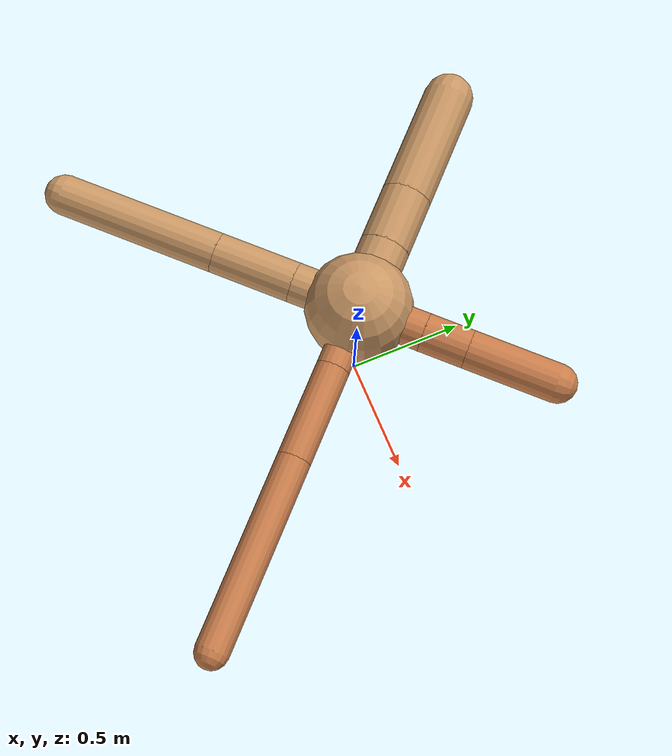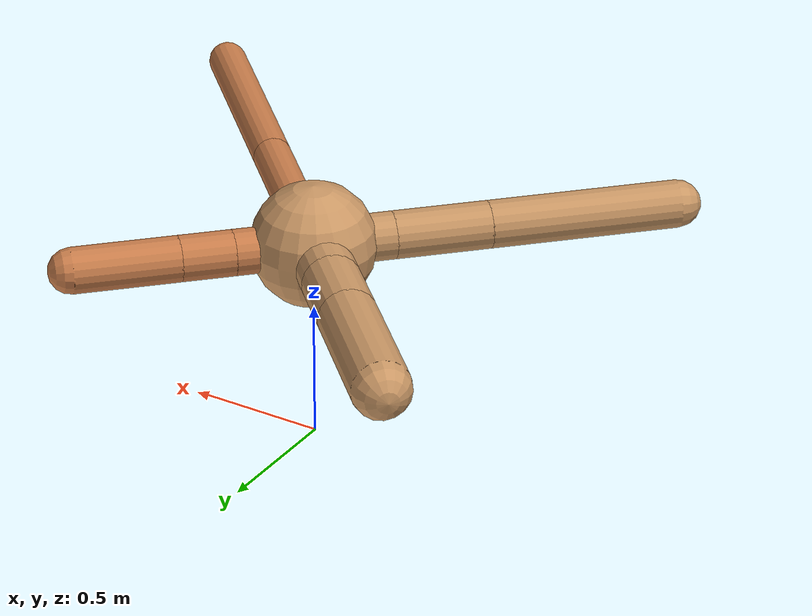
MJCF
<?xml version="1.0" ?>
<mujoco model="ant">

	<compiler angle="degree" coordinate="local" inertiafromgeom="true"/>

	<option integrator="RK4" timestep="0.01"/>

	<custom>

		<numeric data="0.0 0.0 0.55 1.0 0.0 0.0 0.0 0.0 1.0 0.0 -1.0 0.0 -1.0 0.0 1.0" name="init_qpos"/>

	</custom>

	<default>

		<joint armature="1" damping="1" limited="true"/>

		<geom conaffinity="0" condim="3" density="5.0" friction="1.5 0.1 0.1" margin="0.01" rgba="0.8 0.6 0.4 1"/>

	</default>

	<worldbody>

		<body name="torso" pos="0 0 0.75">

			<geom name="torso_geom" pos="0 0 0" size="0.22363265797840323" type="sphere"/>

			<!--joint armature="0" damping="0" limited="false" margin="0.01" name="root" pos="0 0 0" type="free"/-->

			<body name="front_left_leg" pos="0 0 0">

				<geom fromto="0 0 0 0.2 0.2 0" name="aux_1_geom" size="0.08143029899137791" type="capsule" rgba=".8 .5 .3 1"/>

				<body name="aux_1" pos="0.2 0.2 0">

					<joint axis="0 0 1" name="hip_1" pos="0.0 0.0 0.0" range="-40 40" type="hinge"/>

					<geom fromto="0 0 0 0.1336973142143459 0.1336973142143459 0" name="left_leg_geom" size="0.08143029899137791" type="capsule" rgba=".8 .5 .3 1"/>

					<body pos="0.1336973142143459 0.1336973142143459 0" name="front_left_foot">

						<joint axis="-1 1 0" name="ankle_1" pos="0.0 0.0 0.0" range="30 100" type="hinge"/>

						<geom fromto="0 0 0 0.2673946284286918 0.2673946284286918 0" name="left_ankle_geom" size="0.08143029899137791" type="capsule" rgba=".8 .5 .3 1"/>

					</body>

				</body>

			</body>

			<body name="front_right_leg" pos="0 0 0">

				<geom fromto="0 0 0 -0.2 0.2 0" name="aux_2_geom" size="0.10525745691421073" type="capsule"/>

				<body name="aux_2" pos="-0.2 0.2 0">

					<joint axis="0 0 1" name="hip_2" pos="0.0 0.0 0.0" range="-40 40" type="hinge"/>

					<geom fromto="0 0 0 -0.17436624622012598 0.17436624622012598 0" name="right_leg_geom" size="0.10525745691421073" type="capsule"/>

					<body pos="-0.17436624622012598 0.17436624622012598 0" name="front_right_foot">

						<joint axis="1 1 0" name="ankle_2" pos="0.0 0.0 0.0" range="-100 -30" type="hinge"/>

						<geom fromto="0 0 0 -0.34873249244025195 0.34873249244025195 0" name="right_ankle_geom" size="0.10525745691421073" type="capsule"/>

					</body>

				</body>

			</body>

			<body name="left_back_leg" pos="0 0 0">

				<geom fromto="0 0 0 -0.2 -0.2 0" name="aux_3_geom" size="0.08481735956440568" type="capsule"/>

				<body name="aux_3" pos="-0.2 -0.2 0">

					<joint axis="0 0 1" name="hip_3" pos="0.0 0.0 0.0" range="-40 40" type="hinge"/>

					<geom fromto="0 0 0 -0.24233250400694342 -0.24233250400694342 0" name="back_leg_geom" size="0.08481735956440568" type="capsule"/>

					<body pos="-0.24233250400694342 -0.24233250400694342 0" name="left_back_foot">

						<joint axis="-1 1 0" name="ankle_3" pos="0.0 0.0 0.0" range="-100 -30" type="hinge"/>

						<geom fromto="0 0 0 -0.48466500801388684 -0.48466500801388684 0" name="third_ankle_geom" size="0.08481735956440568" type="capsule"/>

					</body>

				</body>

			</body>

			<body name="right_back_leg" pos="0 0 0">

				<geom fromto="0 0 0 0.2 -0.2 0" name="aux_4_geom" size="0.06971098607000681" type="capsule" rgba=".8 .5 .3 1"/>

				<body name="aux_4" pos="0.2 -0.2 0">

					<joint axis="0 0 1" name="hip_4" pos="0.0 0.0 0.0" range="-40 40" type="hinge"/>

					<geom fromto="0 0 0 0.28690093527270216 -0.28690093527270216 0" name="rightback_leg_geom" size="0.06971098607000681" type="capsule" rgba=".8 .5 .3 1"/>

					<body pos="0.28690093527270216 -0.28690093527270216 0" name="right_back_foot">

						<joint axis="1 1 0" name="ankle_4" pos="0.0 0.0 0.0" range="30 100" type="hinge"/>

						<geom fromto="0 0 0 0.5738018705454043 -0.5738018705454043 0" name="fourth_ankle_geom" size="0.06971098607000681" type="capsule" rgba=".8 .5 .3 1"/>

					</body>

				</body>

			</body>

		</body>

	</worldbody>

	<actuator>

		<motor ctrllimited="true" ctrlrange="-1.0 1.0" joint="hip_4" gear="150"/>

		<motor ctrllimited="true" ctrlrange="-1.0 1.0" joint="ankle_4" gear="150"/>

		<motor ctrllimited="true" ctrlrange="-1.0 1.0" joint="hip_1" gear="150"/>

		<motor ctrllimited="true" ctrlrange="-1.0 1.0" joint="ankle_1" gear="150"/>

		<motor ctrllimited="true" ctrlrange="-1.0 1.0" joint="hip_2" gear="150"/>

		<motor ctrllimited="true" ctrlrange="-1.0 1.0" joint="ankle_2" gear="150"/>

		<motor ctrllimited="true" ctrlrange="-1.0 1.0" joint="hip_3" gear="150"/>

		<motor ctrllimited="true" ctrlrange="-1.0 1.0" joint="ankle_3" gear="150"/>

	</actuator>

</mujoco>
